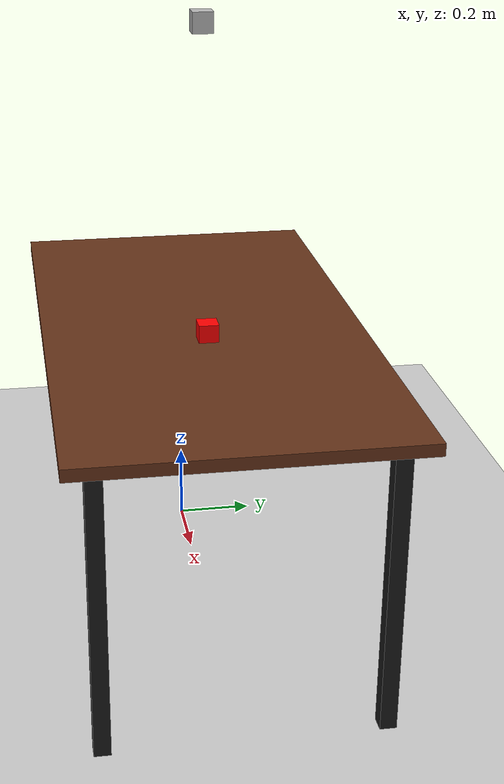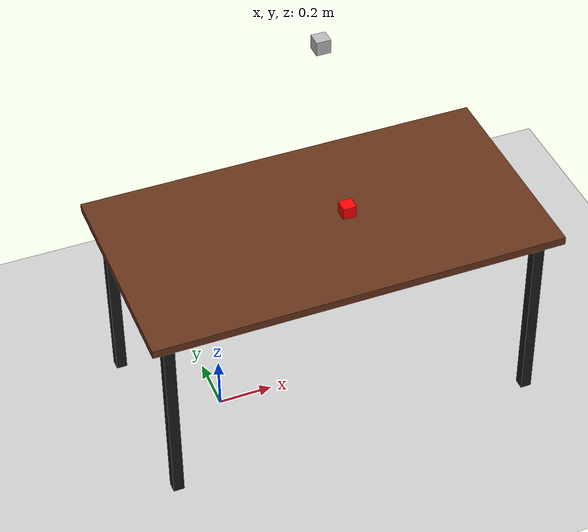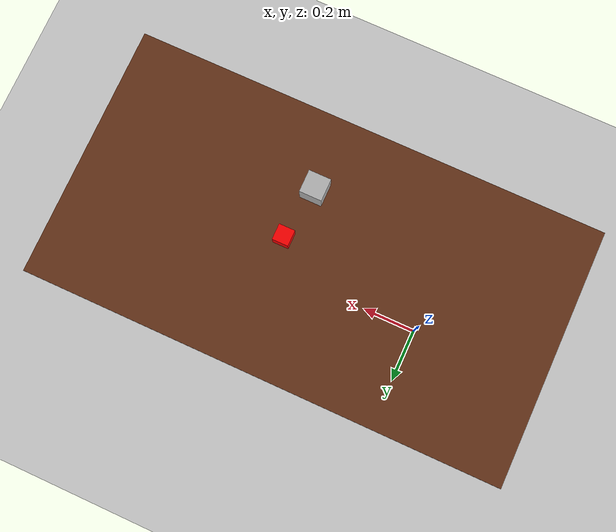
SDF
<?xml version="1.0" ?>
<sdf version="1.6">
  <world name="default">

    <plugin filename="libignition-gazebo-physics-system.so" name="ignition::gazebo::systems::Physics"/>
    <plugin filename="libignition-gazebo-user-commands-system.so" name="ignition::gazebo::systems::UserCommands"/>
    <plugin filename="libignition-gazebo-scene-broadcaster-system.so" name="ignition::gazebo::systems::SceneBroadcaster"/>
    <plugin filename="libignition-gazebo-contact-system.so" name="ignition::gazebo::systems::Contact"/>

    <plugin filename="libignition-gazebo-sensors-system.so" name="ignition::gazebo::systems::Sensors">
      <render_engine>ogre2</render_engine>
    </plugin>

    <plugin filename="ign_ros2_control-system" name="ign_ros2_control::IgnitionRos2ControlSystem"/>

    <light type="directional" name="sun">
      <cast_shadows>true</cast_shadows>
      <pose>0 0 10 0 0 0</pose>
      <diffuse>0.8 0.8 0.8 1</diffuse>
      <specular>0.2 0.2 0.2 1</specular>
    </light>

    <model name="ground_plane">
      <static>true</static>
      <link name="link">
        <collision name="collision">
          <geometry><plane><normal>0 0 1</normal></plane></geometry>
        </collision>
        <visual name="visual">
          <geometry><plane><normal>0 0 1</normal></plane></geometry>
          <material><ambient>0.8 0.8 0.8 1</ambient></material>
        </visual>
      </link>
    </model>

    <include>
      <uri>model://table</uri>
      <name>table</name>
      <pose>0.4 0.0 0.0 0 0 0</pose>
    </include>

    <include>
      <uri>model://cube</uri>
      <name>cube</name>
      <pose>0.5 0.0 0.77 0 0 0</pose> </include>

    <model name="camera_model">
      <static>true</static>
      <pose>0.4 0.0 1.5 0 1.5708 3.1416</pose>
      <link name="link">
        <visual name="visual">
          <geometry><box><size>0.05 0.05 0.05</size></box></geometry>
        </visual>
        <sensor name="rgb_camera" type="camera">
          <always_on>true</always_on>
          <update_rate>15</update_rate>
          <visualize>true</visualize>
          <topic>camera/image_raw</topic>
          <camera>
            <horizontal_fov>1.047</horizontal_fov>
            <image>
              <width>640</width>
              <height>480</height>
              <format>R8G8B8</format>
            </image>
            <clip>
              <near>0.05</near>
              <far>20</far>
            </clip>
          </camera>
        </sensor>
      </link>
    </model>

  </world>
</sdf>

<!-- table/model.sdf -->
<sdf version="1.6">
  <model name="table">
    <static>true</static>
    <link name="link">
      <collision name="surface">
        <pose>0 0 0.735 0 0 0</pose>
        <geometry>
          <box>
            <size>1.5 0.8 0.03</size>
          </box>
        </geometry>
        <surface>
          <friction>
            <ode>
              <mu>1.0</mu>
              <mu2>1.0</mu2>
            </ode>
          </friction>
          <contact>
            <ode>
              <kp>1000000.0</kp>
              <kd>1.0</kd>
            </ode>
          </contact>
        </surface>
      </collision>

      <visual name="visual_surface">
        <pose>0 0 0.735 0 0 0</pose>
        <geometry>
          <box>
            <size>1.5 0.8 0.03</size>
          </box>
        </geometry>
        <material>
          <ambient>0.4 0.2 0.1 1</ambient>
          <diffuse>0.4 0.2 0.1 1</diffuse>
          <specular>0.1 0.1 0.1 1</specular>
        </material>
      </visual>

      <collision name="leg1">
        <pose>0.68 0.33 0.36 0 0 0</pose>
        <geometry><box><size>0.04 0.04 0.72</size></box></geometry>
      </collision>
      <visual name="visual_leg1">
        <pose>0.68 0.33 0.36 0 0 0</pose>
        <geometry><box><size>0.04 0.04 0.72</size></box></geometry>
        <material><ambient>0.1 0.1 0.1 1</ambient><diffuse>0.1 0.1 0.1 1</diffuse></material>
      </visual>

      <collision name="leg2">
        <pose>-0.68 0.33 0.36 0 0 0</pose>
        <geometry><box><size>0.04 0.04 0.72</size></box></geometry>
      </collision>
      <visual name="visual_leg2">
        <pose>-0.68 0.33 0.36 0 0 0</pose>
        <geometry><box><size>0.04 0.04 0.72</size></box></geometry>
        <material><ambient>0.1 0.1 0.1 1</ambient><diffuse>0.1 0.1 0.1 1</diffuse></material>
      </visual>

      <collision name="leg3">
        <pose>0.68 -0.33 0.36 0 0 0</pose>
        <geometry><box><size>0.04 0.04 0.72</size></box></geometry>
      </collision>
      <visual name="visual_leg3">
        <pose>0.68 -0.33 0.36 0 0 0</pose>
        <geometry><box><size>0.04 0.04 0.72</size></box></geometry>
        <material><ambient>0.1 0.1 0.1 1</ambient><diffuse>0.1 0.1 0.1 1</diffuse></material>
      </visual>

      <collision name="leg4">
        <pose>-0.68 -0.33 0.36 0 0 0</pose>
        <geometry><box><size>0.04 0.04 0.72</size></box></geometry>
      </collision>
      <visual name="visual_leg4">
        <pose>-0.68 -0.33 0.36 0 0 0</pose>
        <geometry><box><size>0.04 0.04 0.72</size></box></geometry>
        <material><ambient>0.1 0.1 0.1 1</ambient><diffuse>0.1 0.1 0.1 1</diffuse></material>
      </visual>
    </link>
  </model>
</sdf>

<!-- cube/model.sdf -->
<sdf version="1.6">
  <model name="cube">
    <pose>0 0 0 0 0 0</pose>
    <link name="link">
      <inertial>
        <mass>0.1</mass> <inertia>
          <ixx>0.000166667</ixx>
          <iyy>0.000166667</iyy>
          <izz>0.000166667</izz>
        </inertia>
      </inertial>

      <collision name="collision">
        <geometry>
          <box>
            <size>0.05 0.05 0.05</size> </box>
        </geometry>
        <surface>
          <friction>
            <ode>
              <mu>1.0</mu> <mu2>1.0</mu2>
            </ode>
          </friction>
        </surface>
      </collision>

      <visual name="visual">
        <geometry>
          <box>
            <size>0.05 0.05 0.05</size>
          </box>
        </geometry>
        <material>
          <ambient>1 0 0 1</ambient>
          <diffuse>1 0 0 1</diffuse>
          <specular>0.1 0.1 0.1 1</specular>
        </material>
      </visual>
    </link>
  </model>
</sdf>
